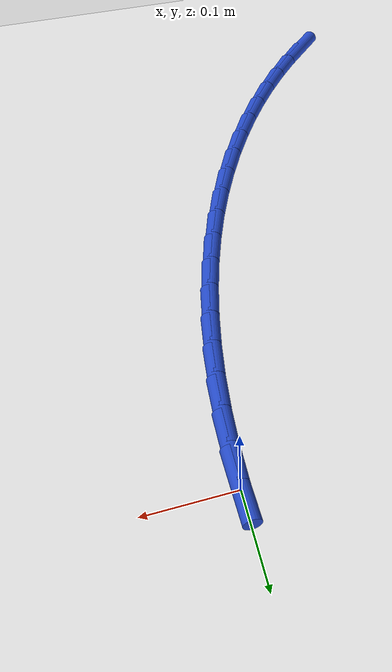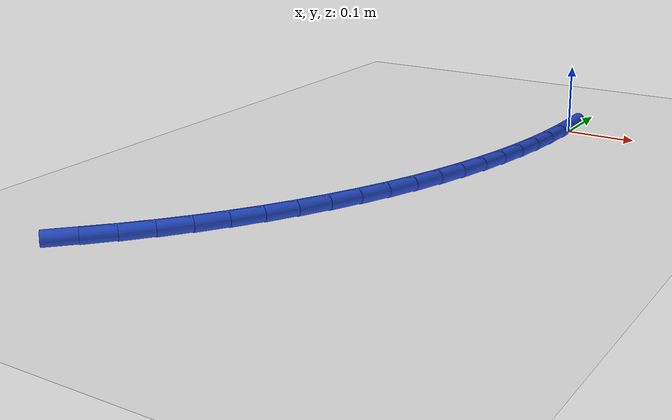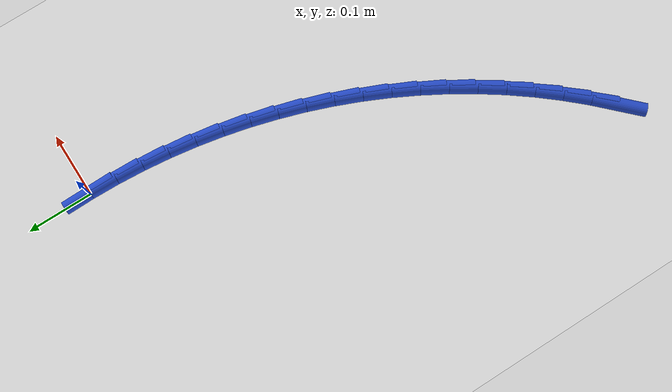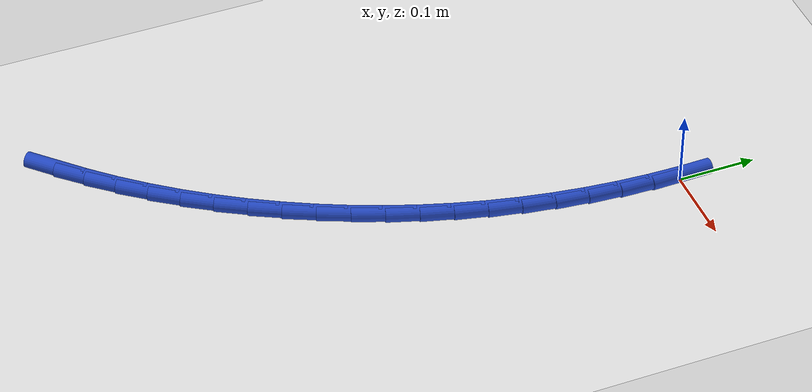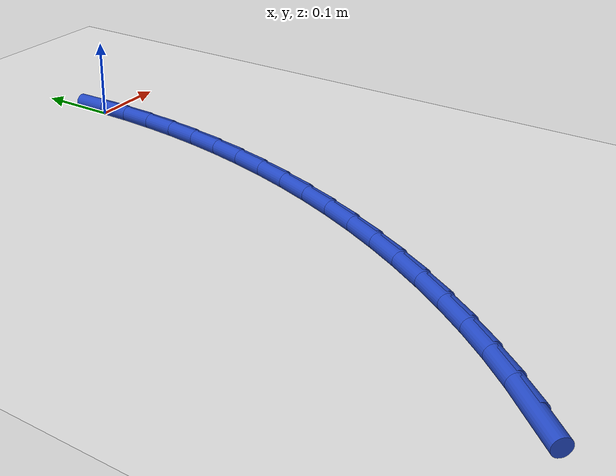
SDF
<sdf version="1.6">
 <world name="default">
  <model name="ground_plane">
   <static>1</static>
   <link name="link">
    <collision name="collision">
     <geometry><plane><normal>0 0 1</normal><size>100 100</size></plane></geometry>
     <surface><friction><ode><mu>100</mu><mu2>50</mu2></ode></friction></surface>
    </collision>
    <visual name="visual">
     <cast_shadows>0</cast_shadows>
     <geometry><plane><normal>0 0 1</normal><size>100 100</size></plane></geometry>
     <material>
      <script><uri>file://media/materials/scripts/gazebo.material</uri><name>Gazebo/WhiteGlow</name></script>
     </material>
    </visual>
   </link>
  </model>
  <model name="line">
   <link name="link_0">
    <pose>2.42861286636753e-17 -4.163336342344337e-17 0.01 0 1.57 -1.5534062918979743</pose>
    <collision name="collision">
     <geometry><cylinder><radius>0.01</radius><length>0.08</length></cylinder></geometry>
    </collision>
    <visual name="visual">
     <material>
      <script><name>Gazebo/Blue</name><uri>file://media/materials/scripts/gazebo.material</uri></script>
     </material>
     <geometry><cylinder><radius>0.01</radius><length>0.08</length></cylinder></geometry>
    </visual>
   </link>
   <link name="link_141">
    <pose>-0.29748069134200117 -0.7115352668393651 0.01 0 1.57 0.7879006457083078</pose>
    <collision name="collision">
     <geometry><cylinder><radius>0.01</radius><length>0.08</length></cylinder></geometry>
    </collision>
    <visual name="visual">
     <material>
      <script><name>Gazebo/Blue</name><uri>file://media/materials/scripts/gazebo.material</uri></script>
     </material>
     <geometry><cylinder><radius>0.01</radius><length>0.08</length></cylinder></geometry>
    </visual>
   </link>
   <link name="link_142">
    <pose>-0.2683894469734494 -0.682298056239334 0.01 0 1.57 0.8346952207828432</pose>
    <collision name="collision">
     <geometry><cylinder><radius>0.01</radius><length>0.08</length></cylinder></geometry>
    </collision>
    <visual name="visual">
     <material>
      <script><name>Gazebo/Blue</name><uri>file://media/materials/scripts/gazebo.material</uri></script>
     </material>
     <geometry><cylinder><radius>0.01</radius><length>0.08</length></cylinder></geometry>
    </visual>
   </link>
   <link name="link_143">
    <pose>-0.24059270545313693 -0.6516161520109787 0.01 0 1.57 0.8802194362879793</pose>
    <collision name="collision">
     <geometry><cylinder><radius>0.01</radius><length>0.08</length></cylinder></geometry>
    </collision>
    <visual name="visual">
     <material>
      <script><name>Gazebo/Blue</name><uri>file://media/materials/scripts/gazebo.material</uri></script>
     </material>
     <geometry><cylinder><radius>0.01</radius><length>0.08</length></cylinder></geometry>
    </visual>
   </link>
   <link name="link_144">
    <pose>-0.2141298856525158 -0.6195907204848298 0.01 0 1.57 0.9246309163505892</pose>
    <collision name="collision">
     <geometry><cylinder><radius>0.01</radius><length>0.08</length></cylinder></geometry>
    </collision>
    <visual name="visual">
     <material>
      <script><name>Gazebo/Blue</name><uri>file://media/materials/scripts/gazebo.material</uri></script>
     </material>
     <geometry><cylinder><radius>0.01</radius><length>0.08</length></cylinder></geometry>
    </visual>
   </link>
   <link name="link_145">
    <pose>-0.1890403756953956 -0.5863230670877709 0.01 0 1.57 0.9680962420965314</pose>
    <collision name="collision">
     <geometry><cylinder><radius>0.01</radius><length>0.08</length></cylinder></geometry>
    </collision>
    <visual name="visual">
     <material>
      <script><name>Gazebo/Blue</name><uri>file://media/materials/scripts/gazebo.material</uri></script>
     </material>
     <geometry><cylinder><radius>0.01</radius><length>0.08</length></cylinder></geometry>
    </visual>
   </link>
   <link name="link_146">
    <pose>-0.16536356370558541 -0.5519144972466832 0.01 0 1.57 1.0107860924677814</pose>
    <collision name="collision">
     <geometry><cylinder><radius>0.01</radius><length>0.08</length></cylinder></geometry>
    </collision>
    <visual name="visual">
     <material>
      <script><name>Gazebo/Blue</name><uri>file://media/materials/scripts/gazebo.material</uri></script>
     </material>
     <geometry><cylinder><radius>0.01</radius><length>0.08</length></cylinder></geometry>
    </visual>
   </link>
   <link name="link_147">
    <pose>-0.14313883780689549 -0.5164663163884506 0.01 0 1.57 1.0528739589790865</pose>
    <collision name="collision">
     <geometry><cylinder><radius>0.01</radius><length>0.08</length></cylinder></geometry>
    </collision>
    <visual name="visual">
     <material>
      <script><name>Gazebo/Blue</name><uri>file://media/materials/scripts/gazebo.material</uri></script>
     </material>
     <geometry><cylinder><radius>0.01</radius><length>0.08</length></cylinder></geometry>
    </visual>
   </link>
   <link name="link_148">
    <pose>-0.12240558612313499 -0.4800798299399552 0.01 0 1.57 1.094535397223856</pose>
    <collision name="collision">
     <geometry><cylinder><radius>0.01</radius><length>0.08</length></cylinder></geometry>
    </collision>
    <visual name="visual">
     <material>
      <script><name>Gazebo/Blue</name><uri>file://media/materials/scripts/gazebo.material</uri></script>
     </material>
     <geometry><cylinder><radius>0.01</radius><length>0.08</length></cylinder></geometry>
    </visual>
   </link>
   <link name="link_149">
    <pose>-0.10320319677811333 -0.4428563433280791 0.01 0 1.57 1.1359476922823961</pose>
    <collision name="collision">
     <geometry><cylinder><radius>0.01</radius><length>0.08</length></cylinder></geometry>
    </collision>
    <visual name="visual">
     <material>
      <script><name>Gazebo/Blue</name><uri>file://media/materials/scripts/gazebo.material</uri></script>
     </material>
     <geometry><cylinder><radius>0.01</radius><length>0.08</length></cylinder></geometry>
    </visual>
   </link>
   <link name="link_150">
    <pose>-0.08557105789564007 -0.40489716197970516 0.01 0 1.57 1.1772871944639203</pose>
    <collision name="collision">
     <geometry><cylinder><radius>0.01</radius><length>0.08</length></cylinder></geometry>
    </collision>
    <visual name="visual">
     <material>
      <script><name>Gazebo/Blue</name><uri>file://media/materials/scripts/gazebo.material</uri></script>
     </material>
     <geometry><cylinder><radius>0.01</radius><length>0.08</length></cylinder></geometry>
    </visual>
   </link>
   <link name="link_151">
    <pose>-0.06954817163449578 -0.3663029482319764 0.01 0 1.57 1.2186174528662754</pose>
    <collision name="collision">
     <geometry><cylinder><radius>0.01</radius><length>0.08</length></cylinder></geometry>
    </collision>
    <visual name="visual">
     <material>
      <script><name>Gazebo/Blue</name><uri>file://media/materials/scripts/gazebo.material</uri></script>
     </material>
     <geometry><cylinder><radius>0.01</radius><length>0.08</length></cylinder></geometry>
    </visual>
   </link>
   <link name="link_152">
    <pose>-0.0551603592869938 -0.32715240263963413 0.01 0 1.57 1.2598715704590782</pose>
    <collision name="collision">
     <geometry><cylinder><radius>0.01</radius><length>0.08</length></cylinder></geometry>
    </collision>
    <visual name="visual">
     <material>
      <script><name>Gazebo/Blue</name><uri>file://media/materials/scripts/gazebo.material</uri></script>
     </material>
     <geometry><cylinder><radius>0.01</radius><length>0.08</length></cylinder></geometry>
    </visual>
   </link>
   <link name="link_153">
    <pose>-0.042417305770887745 -0.28749733954719003 0.01 0 1.57 1.3010513203516776</pose>
    <collision name="collision">
     <geometry><cylinder><radius>0.01</radius><length>0.08</length></cylinder></geometry>
    </collision>
    <visual name="visual">
     <material>
      <script><name>Gazebo/Blue</name><uri>file://media/materials/scripts/gazebo.material</uri></script>
     </material>
     <geometry><cylinder><radius>0.01</radius><length>0.08</length></cylinder></geometry>
    </visual>
   </link>
   <link name="link_154">
    <pose>-0.03132771134287727 -0.2473879326701536 0.01 0 1.57 1.3421668489745817</pose>
    <collision name="collision">
     <geometry><cylinder><radius>0.01</radius><length>0.08</length></cylinder></geometry>
    </collision>
    <visual name="visual">
     <material>
      <script><name>Gazebo/Blue</name><uri>file://media/materials/scripts/gazebo.material</uri></script>
     </material>
     <geometry><cylinder><radius>0.01</radius><length>0.08</length></cylinder></geometry>
    </visual>
   </link>
   <link name="link_155">
    <pose>-0.021900276259661983 -0.20687435572403354 0.01 0 1.57 1.3832295429404047</pose>
    <collision name="collision">
     <geometry><cylinder><radius>0.01</radius><length>0.08</length></cylinder></geometry>
    </collision>
    <visual name="visual">
     <material>
      <script><name>Gazebo/Blue</name><uri>file://media/materials/scripts/gazebo.material</uri></script>
     </material>
     <geometry><cylinder><radius>0.01</radius><length>0.08</length></cylinder></geometry>
    </visual>
   </link>
   <link name="link_156">
    <pose>-0.014143700777941368 -0.16600678242433844 0.01 0 1.57 1.4242515947710184</pose>
    <collision name="collision">
     <geometry><cylinder><radius>0.01</radius><length>0.08</length></cylinder></geometry>
    </collision>
    <visual name="visual">
     <material>
      <script><name>Gazebo/Blue</name><uri>file://media/materials/scripts/gazebo.material</uri></script>
     </material>
     <geometry><cylinder><radius>0.01</radius><length>0.08</length></cylinder></geometry>
    </visual>
   </link>
   <link name="link_157">
    <pose>-0.008066685154415328 -0.12483538648657884 0.01 0 1.57 1.4652455643593152</pose>
    <collision name="collision">
     <geometry><cylinder><radius>0.01</radius><length>0.08</length></cylinder></geometry>
    </collision>
    <visual name="visual">
     <material>
      <script><name>Gazebo/Blue</name><uri>file://media/materials/scripts/gazebo.material</uri></script>
     </material>
     <geometry><cylinder><radius>0.01</radius><length>0.08</length></cylinder></geometry>
    </visual>
   </link>
   <link name="link_158">
    <pose>-0.0036779296457833417 -0.08341034162626315 0.01 0 1.57 1.5062239407905282</pose>
    <collision name="collision">
     <geometry><cylinder><radius>0.01</radius><length>0.08</length></cylinder></geometry>
    </collision>
    <visual name="visual">
     <material>
      <script><name>Gazebo/Blue</name><uri>file://media/materials/scripts/gazebo.material</uri></script>
     </material>
     <geometry><cylinder><radius>0.01</radius><length>0.08</length></cylinder></geometry>
    </visual>
   </link>
   <link name="link_159">
    <pose>-0.0009861345087450162 -0.04178182155890048 0.01 0 1.57 1.5471987089084178</pose>
    <collision name="collision">
     <geometry><cylinder><radius>0.01</radius><length>0.08</length></cylinder></geometry>
    </collision>
    <visual name="visual">
     <material>
      <script><name>Gazebo/Blue</name><uri>file://media/materials/scripts/gazebo.material</uri></script>
     </material>
     <geometry><cylinder><radius>0.01</radius><length>0.08</length></cylinder></geometry>
    </visual>
   </link>
  </model>
 </world>
</sdf>
